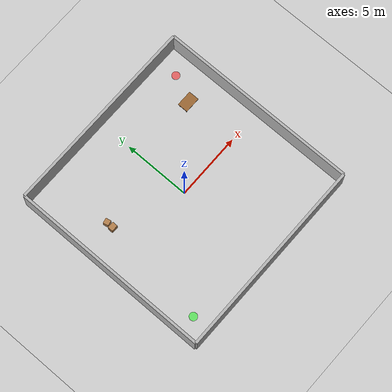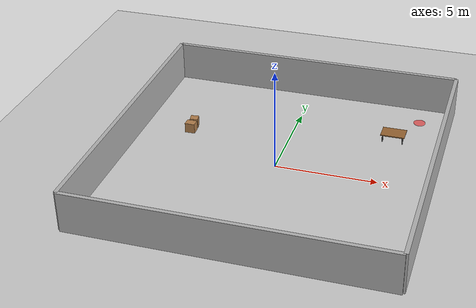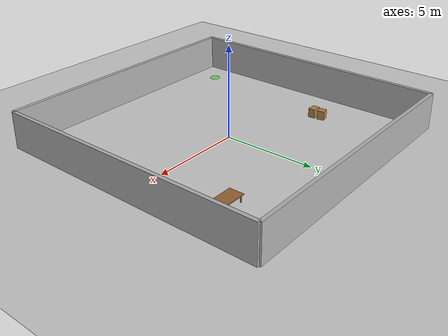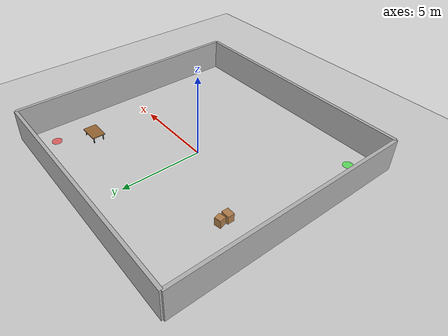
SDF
<sdf version="1.6">
 <world name="weighted_xai_demo">
  <physics type="ode">
   <real_time_update_rate>1000.0</real_time_update_rate>
   <max_step_size>0.001</max_step_size>
   <real_time_factor>1</real_time_factor>
  </physics>
  <scene><ambient>0.4 0.4 0.4 1</ambient><background>0.7 0.7 0.7 1</background><shadows>true</shadows></scene>
  <include><uri>model://sun</uri></include>
  <include><uri>model://ground_plane</uri></include>
  <model name="wall_north">
   <static>true</static>
   <pose>0 7.5 1 0 0 0</pose>
   <link name="link">
    <visual name="visual">
     <geometry><box><size>15 0.2 2</size></box></geometry>
     <material><ambient>0.5 0.5 0.5 1</ambient><diffuse>0.7 0.7 0.7 1</diffuse></material>
    </visual>
    <collision name="collision"><geometry><box><size>15 0.2 2</size></box></geometry></collision>
   </link>
  </model>
  <model name="wall_south">
   <static>true</static>
   <pose>0 -7.5 1 0 0 0</pose>
   <link name="link">
    <visual name="visual">
     <geometry><box><size>15 0.2 2</size></box></geometry>
     <material><ambient>0.5 0.5 0.5 1</ambient><diffuse>0.7 0.7 0.7 1</diffuse></material>
    </visual>
    <collision name="collision"><geometry><box><size>15 0.2 2</size></box></geometry></collision>
   </link>
  </model>
  <model name="wall_east">
   <static>true</static>
   <pose>7.5 0 1 0 0 0</pose>
   <link name="link">
    <visual name="visual">
     <geometry><box><size>0.2 15 2</size></box></geometry>
     <material><ambient>0.5 0.5 0.5 1</ambient><diffuse>0.7 0.7 0.7 1</diffuse></material>
    </visual>
    <collision name="collision"><geometry><box><size>0.2 15 2</size></box></geometry></collision>
   </link>
  </model>
  <model name="wall_west">
   <static>true</static>
   <pose>-7.5 0 1 0 0 0</pose>
   <link name="link">
    <visual name="visual">
     <geometry><box><size>0.2 15 2</size></box></geometry>
     <material><ambient>0.5 0.5 0.5 1</ambient><diffuse>0.7 0.7 0.7 1</diffuse></material>
    </visual>
    <collision name="collision"><geometry><box><size>0.2 15 2</size></box></geometry></collision>
   </link>
  </model>
  <model name="table_1">
   <static>true</static>
   <pose>5.0 4.0 0.4 0 0 0</pose>
   <link name="link">
    <visual name="tabletop">
     <geometry><box><size>1.2 0.8 0.05</size></box></geometry>
     <material><ambient>0.5 0.3 0.1 1</ambient><diffuse>0.6 0.4 0.2 1</diffuse></material>
    </visual>
    <visual name="leg1">
     <pose>0.5 0.3 -0.2 0 0 0</pose>
     <geometry><cylinder><radius>0.03</radius><length>0.4</length></cylinder></geometry>
     <material><ambient>0.3 0.3 0.3 1</ambient><diffuse>0.3 0.3 0.3 1</diffuse></material>
    </visual>
    <visual name="leg2">
     <pose>0.5 -0.3 -0.2 0 0 0</pose>
     <geometry><cylinder><radius>0.03</radius><length>0.4</length></cylinder></geometry>
     <material><ambient>0.3 0.3 0.3 1</ambient><diffuse>0.3 0.3 0.3 1</diffuse></material>
    </visual>
    <visual name="leg3">
     <pose>-0.5 0.3 -0.2 0 0 0</pose>
     <geometry><cylinder><radius>0.03</radius><length>0.4</length></cylinder></geometry>
     <material><ambient>0.3 0.3 0.3 1</ambient><diffuse>0.3 0.3 0.3 1</diffuse></material>
    </visual>
    <visual name="leg4">
     <pose>-0.5 -0.3 -0.2 0 0 0</pose>
     <geometry><cylinder><radius>0.03</radius><length>0.4</length></cylinder></geometry>
     <material><ambient>0.3 0.3 0.3 1</ambient><diffuse>0.3 0.3 0.3 1</diffuse></material>
    </visual>
    <collision name="collision">
     <pose>0 0 -0.2 0 0 0</pose>
     <geometry><box><size>1.2 0.8 0.45</size></box></geometry>
    </collision>
   </link>
  </model>
  <model name="box_1">
   <static>true</static>
   <pose>-5.0 2.0 0.25 0 0 0</pose>
   <link name="link">
    <visual name="visual">
     <geometry><box><size>0.5 0.4 0.5</size></box></geometry>
     <material><ambient>0.6 0.4 0.2 1</ambient><diffuse>0.7 0.5 0.3 1</diffuse></material>
    </visual>
    <collision name="collision"><geometry><box><size>0.5 0.4 0.5</size></box></geometry></collision>
   </link>
  </model>
  <model name="box_2">
   <static>true</static>
   <pose>-5.0 2.5 0.25 0 0 0.2</pose>
   <link name="link">
    <visual name="visual">
     <geometry><box><size>0.4 0.4 0.5</size></box></geometry>
     <material><ambient>0.6 0.4 0.2 1</ambient><diffuse>0.7 0.5 0.3 1</diffuse></material>
    </visual>
    <collision name="collision"><geometry><box><size>0.4 0.4 0.5</size></box></geometry></collision>
   </link>
  </model>
  <model name="spawn_marker">
   <static>true</static>
   <pose>-6.0 -6.0 0.01 0 0 0</pose>
   <link name="link">
    <visual name="visual">
     <geometry><cylinder><radius>0.3</radius><length>0.02</length></cylinder></geometry>
     <material><ambient>0 0.8 0 0.5</ambient><diffuse>0 1 0 0.5</diffuse></material>
    </visual>
   </link>
  </model>
  <model name="goal_marker">
   <static>true</static>
   <pose>6.0 6.0 0.01 0 0 0</pose>
   <link name="link">
    <visual name="visual">
     <geometry><cylinder><radius>0.3</radius><length>0.02</length></cylinder></geometry>
     <material><ambient>0.8 0 0 0.5</ambient><diffuse>1 0 0 0.5</diffuse></material>
    </visual>
   </link>
  </model>
 </world>
</sdf>
